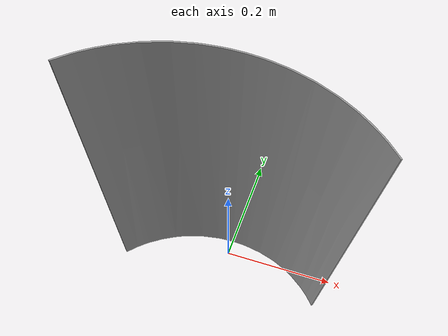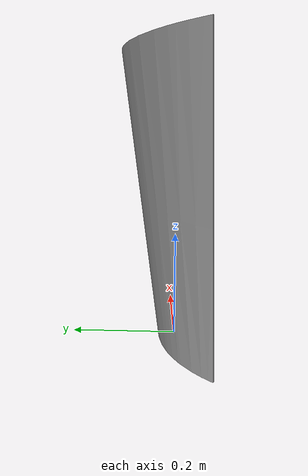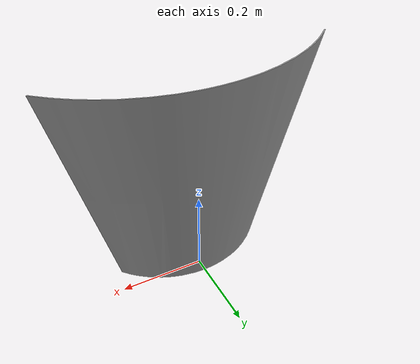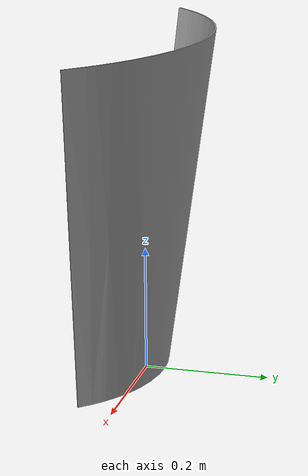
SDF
<?xml version='1.0'?>
<sdf version='1.6'>
  <model name='ur_cone'>
    <link name='base_link'>
      <pose frame=''>0 0 0 0 -0 0</pose>
      <inertial>
        <pose frame=''>-6e-06 0.051565 0.650838 0 -0 0</pose>
        <mass>5.65771</mass>
        <inertia>
          <ixx>0.684723</ixx>
          <ixy>-4.755e-05</ixy>
          <ixz>6.53093e-06</ixz>
          <iyy>1.05881</iyy>
          <iyz>-0.0526838</iyz>
          <izz>0.415369</izz>
        </inertia>
      </inertial>
      <gravity>1</gravity>
      <velocity_decay/>
      <self_collide>0</self_collide>
      <enable_wind>0</enable_wind>
      <kinematic>0</kinematic>
      <visual name='base_link_visual'>
        <pose frame=''>0 0 0 0 -0 0</pose>
        <geometry>
          <mesh>
            <scale>0.6 0.6 0.45</scale>
            <uri>model://ur_cone/meshes/base_link.STL</uri>
          </mesh>
        </geometry>
        <material>
          <script>
            <name>Gazebo/Grey</name>
            <uri>file://media/materials/scripts/gazebo.material</uri>
          </script>
          <shader type='pixel'/>
        </material>
        <transparency>0</transparency>
        <cast_shadows>1</cast_shadows>
      </visual>
      <collision name='base_link_collision'>
        <laser_retro>0</laser_retro>
        <max_contacts>10</max_contacts>
        <pose frame=''>0 0 0 0 -0 0</pose>
        <geometry>
          <mesh>
            <uri>model://ur_cone/meshes/base_link.STL</uri>
            <scale>0.6 0.6 0.45</scale>
          </mesh>
        </geometry>
        <surface>
          <friction>
            <ode>
              <mu>1</mu>
              <mu2>1</mu2>
              <fdir1>0 0 0</fdir1>
              <slip1>0</slip1>
              <slip2>0</slip2>
            </ode>
            <torsional>
              <coefficient>1</coefficient>
              <patch_radius>0</patch_radius>
              <surface_radius>0</surface_radius>
              <use_patch_radius>1</use_patch_radius>
              <ode>
                <slip>0</slip>
              </ode>
            </torsional>
          </friction>
          <bounce>
            <restitution_coefficient>0</restitution_coefficient>
            <threshold>1e+06</threshold>
          </bounce>
          <contact>
            <collide_without_contact>0</collide_without_contact>
            <collide_without_contact_bitmask>1</collide_without_contact_bitmask>
            <collide_bitmask>1</collide_bitmask>
            <ode>
              <soft_cfm>0</soft_cfm>
              <soft_erp>0.2</soft_erp>
              <kp>1e+13</kp>
              <kd>1</kd>
              <max_vel>0.01</max_vel>
              <min_depth>0</min_depth>
            </ode>
            <bullet>
              <split_impulse>1</split_impulse>
              <split_impulse_penetration_threshold>-0.01</split_impulse_penetration_threshold>
              <soft_cfm>0</soft_cfm>
              <soft_erp>0.2</soft_erp>
              <kp>1e+13</kp>
              <kd>1</kd>
            </bullet>
          </contact>
        </surface>
      </collision>
    </link>
    <static>1</static>
    <allow_auto_disable>1</allow_auto_disable>
  </model>
</sdf>
